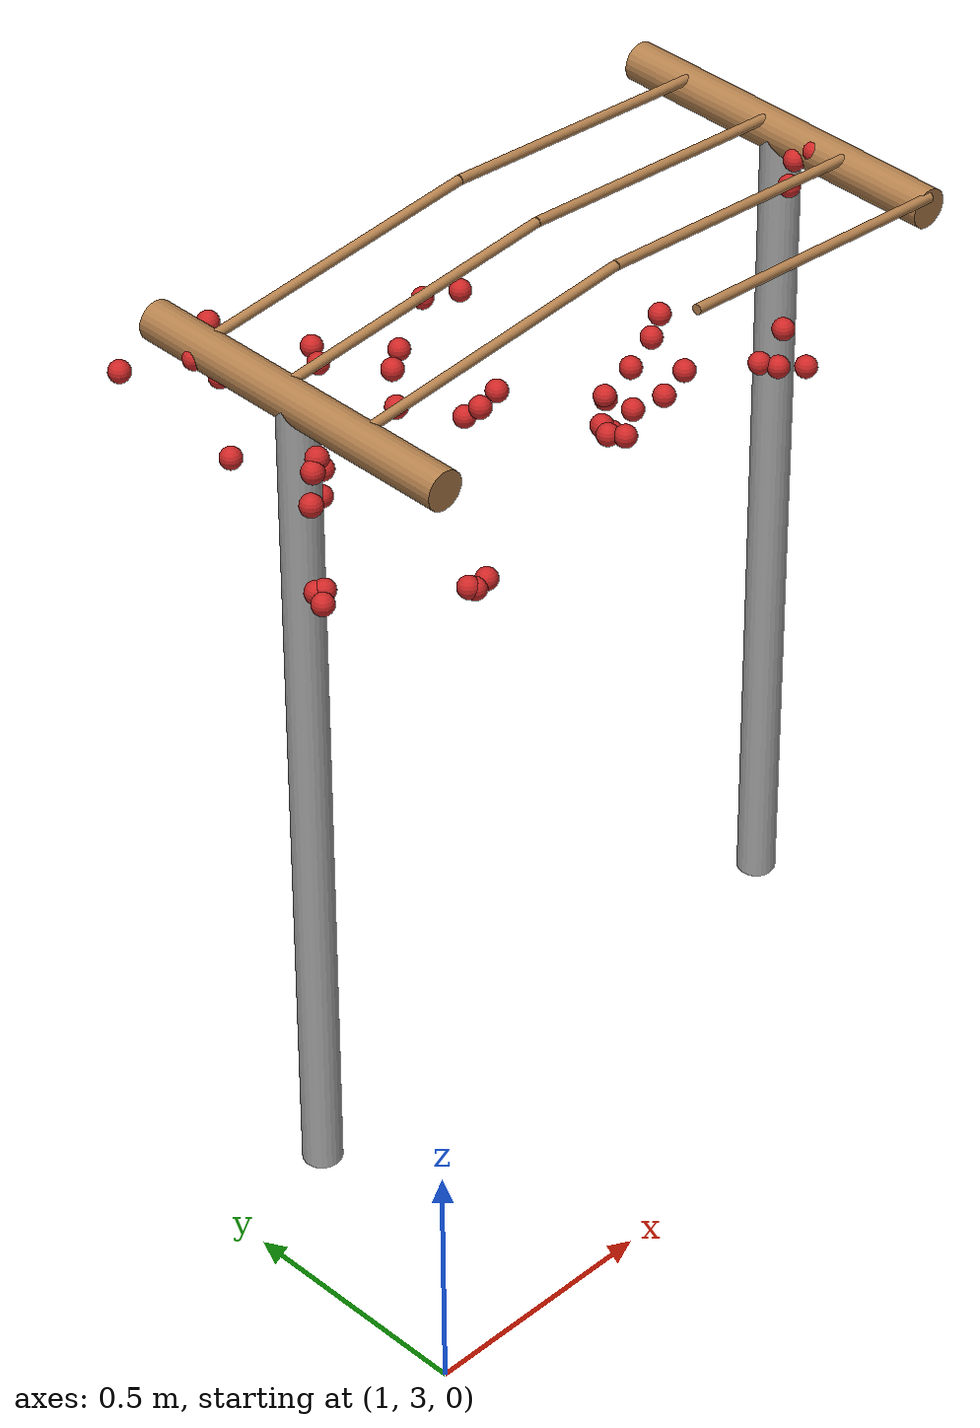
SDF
<sdf version="1.4">
 <model name="pergola">
  <include><name>tree_10</name><pose>1.25 3.6 0 0 0 0</pose><uri>model://tree_trunk</uri></include>
  <include><name>tree_16</name><pose>2.5 3.6 0 0 0 0</pose><uri>model://tree_trunk</uri></include>
  <link name="baseBranch_10">
   <pose>1.25 3.6 1.8 1.5707963267948966 0 0</pose>
   <collision name="collision">
    <geometry><cylinder><radius>0.04</radius><length>0.74</length></cylinder></geometry>
   </collision>
   <visual name="visual">
    <geometry><cylinder><radius>0.04</radius><length>0.74</length></cylinder></geometry>
    <material><script><name>Gazebo/WoodFloor</name></script></material>
   </visual>
   <inertial>
    <mass>10</mass>
    <inertia>
     <ixx>0.4603333333333333</ixx>
     <ixy>0.0</ixy>
     <ixz>0.0</ixz>
     <iyy>0.4603333333333333</iyy>
     <iyz>0.0</iyz>
     <izz>0.008</izz>
    </inertia>
   </inertial>
  </link>
  <link name="baseBranch_16">
   <pose>2.5 3.6 1.8 1.5707963267948966 0 0</pose>
   <collision name="collision">
    <geometry><cylinder><radius>0.04</radius><length>0.74</length></cylinder></geometry>
   </collision>
   <visual name="visual">
    <geometry><cylinder><radius>0.04</radius><length>0.74</length></cylinder></geometry>
    <material><script><name>Gazebo/WoodFloor</name></script></material>
   </visual>
   <inertial>
    <mass>10</mass>
    <inertia>
     <ixx>0.4603333333333333</ixx>
     <ixy>0.0</ixy>
     <ixz>0.0</ixz>
     <iyy>0.4603333333333333</iyy>
     <iyz>0.0</iyz>
     <izz>0.008</izz>
    </inertia>
   </inertial>
  </link>
  <link name="vine_81">
   <pose>2.1875 3.23 1.85 0 -1.4909663410826592 0</pose>
   <collision name="collision">
    <geometry><cylinder><radius>0.01</radius><length>0.6269968101992226</length></cylinder></geometry>
   </collision>
   <visual name="visual">
    <geometry><cylinder><radius>0.01</radius><length>0.6269968101992226</length></cylinder></geometry>
    <material><script><name>Gazebo/WoodFloor</name></script></material>
   </visual>
   <inertial>
    <mass>5</mass>
    <inertia>
     <ixx>0.1639270833333333</ixx>
     <ixy>0.0</ixy>
     <ixz>0.0</ixz>
     <iyy>0.1639270833333333</iyy>
     <iyz>0.0</iyz>
     <izz>0.00025</izz>
    </inertia>
   </inertial>
  </link>
  <link name="vine_82">
   <pose>1.5625 3.43 1.85 0 1.4909663410826592 0</pose>
   <collision name="collision">
    <geometry><cylinder><radius>0.01</radius><length>0.6269968101992226</length></cylinder></geometry>
   </collision>
   <visual name="visual">
    <geometry><cylinder><radius>0.01</radius><length>0.6269968101992226</length></cylinder></geometry>
    <material><script><name>Gazebo/WoodFloor</name></script></material>
   </visual>
   <inertial>
    <mass>5</mass>
    <inertia>
     <ixx>0.1639270833333333</ixx>
     <ixy>0.0</ixy>
     <ixz>0.0</ixz>
     <iyy>0.1639270833333333</iyy>
     <iyz>0.0</iyz>
     <izz>0.00025</izz>
    </inertia>
   </inertial>
  </link>
  <link name="vine_83">
   <pose>2.1875 3.43 1.85 0 -1.4909663410826592 0</pose>
   <collision name="collision">
    <geometry><cylinder><radius>0.01</radius><length>0.6269968101992226</length></cylinder></geometry>
   </collision>
   <visual name="visual">
    <geometry><cylinder><radius>0.01</radius><length>0.6269968101992226</length></cylinder></geometry>
    <material><script><name>Gazebo/WoodFloor</name></script></material>
   </visual>
   <inertial>
    <mass>5</mass>
    <inertia>
     <ixx>0.1639270833333333</ixx>
     <ixy>0.0</ixy>
     <ixz>0.0</ixz>
     <iyy>0.1639270833333333</iyy>
     <iyz>0.0</iyz>
     <izz>0.00025</izz>
    </inertia>
   </inertial>
  </link>
  <link name="vine_84">
   <pose>1.5625 3.63 1.85 0 1.4909663410826592 0</pose>
   <collision name="collision">
    <geometry><cylinder><radius>0.01</radius><length>0.6269968101992226</length></cylinder></geometry>
   </collision>
   <visual name="visual">
    <geometry><cylinder><radius>0.01</radius><length>0.6269968101992226</length></cylinder></geometry>
    <material><script><name>Gazebo/WoodFloor</name></script></material>
   </visual>
   <inertial>
    <mass>5</mass>
    <inertia>
     <ixx>0.1639270833333333</ixx>
     <ixy>0.0</ixy>
     <ixz>0.0</ixz>
     <iyy>0.1639270833333333</iyy>
     <iyz>0.0</iyz>
     <izz>0.00025</izz>
    </inertia>
   </inertial>
  </link>
  <link name="vine_85">
   <pose>2.1875 3.63 1.85 0 -1.4909663410826592 0</pose>
   <collision name="collision">
    <geometry><cylinder><radius>0.01</radius><length>0.6269968101992226</length></cylinder></geometry>
   </collision>
   <visual name="visual">
    <geometry><cylinder><radius>0.01</radius><length>0.6269968101992226</length></cylinder></geometry>
    <material><script><name>Gazebo/WoodFloor</name></script></material>
   </visual>
   <inertial>
    <mass>5</mass>
    <inertia>
     <ixx>0.1639270833333333</ixx>
     <ixy>0.0</ixy>
     <ixz>0.0</ixz>
     <iyy>0.1639270833333333</iyy>
     <iyz>0.0</iyz>
     <izz>0.00025</izz>
    </inertia>
   </inertial>
  </link>
  <link name="vine_86">
   <pose>1.5625 3.83 1.85 0 1.4909663410826592 0</pose>
   <collision name="collision">
    <geometry><cylinder><radius>0.01</radius><length>0.6269968101992226</length></cylinder></geometry>
   </collision>
   <visual name="visual">
    <geometry><cylinder><radius>0.01</radius><length>0.6269968101992226</length></cylinder></geometry>
    <material><script><name>Gazebo/WoodFloor</name></script></material>
   </visual>
   <inertial>
    <mass>5</mass>
    <inertia>
     <ixx>0.1639270833333333</ixx>
     <ixy>0.0</ixy>
     <ixz>0.0</ixz>
     <iyy>0.1639270833333333</iyy>
     <iyz>0.0</iyz>
     <izz>0.00025</izz>
    </inertia>
   </inertial>
  </link>
  <link name="vine_87">
   <pose>2.1875 3.83 1.85 0 -1.4909663410826592 0</pose>
   <collision name="collision">
    <geometry><cylinder><radius>0.01</radius><length>0.6269968101992226</length></cylinder></geometry>
   </collision>
   <visual name="visual">
    <geometry><cylinder><radius>0.01</radius><length>0.6269968101992226</length></cylinder></geometry>
    <material><script><name>Gazebo/WoodFloor</name></script></material>
   </visual>
   <inertial>
    <mass>5</mass>
    <inertia>
     <ixx>0.1639270833333333</ixx>
     <ixy>0.0</ixy>
     <ixz>0.0</ixz>
     <iyy>0.1639270833333333</iyy>
     <iyz>0.0</iyz>
     <izz>0.00025</izz>
    </inertia>
   </inertial>
  </link>
  <link name="fruit_26">
   <pose>1.2367877908554399 3.7677351039851623 1.6043946678326342 0 0 0</pose>
   <collision name="fruit_collision_26"><geometry><sphere><radius>0.022</radius></sphere></geometry></collision>
   <visual name="visual">
    <geometry><sphere><radius>0.022</radius></sphere></geometry>
    <material><script><name>Gazebo/Red</name></script></material>
   </visual>
   <inertial>
    <mass>0.05</mass>
    <inertia>
     <ixx>9.679999999999999e-06</ixx>
     <ixy>0.0</ixy>
     <ixz>0.0</ixz>
     <iyy>9.679999999999999e-06</iyy>
     <iyz>0.0</iyz>
     <izz>9.679999999999999e-06</izz>
    </inertia>
   </inertial>
   <sensor name="fruit_contact_26" type="contact">
    <plugin name="contact_plugin_26" filename="libcontact_plugin.so"/>
    <contact><collision>fruit_collision_26</collision><topic>fruit_contact_topic_26</topic></contact>
   </sensor>
  </link>
  <link name="fruit_38">
   <pose>1.585192683804008 3.48366667679971 1.6825318529486568 0 0 0</pose>
   <collision name="fruit_collision_38"><geometry><sphere><radius>0.022</radius></sphere></geometry></collision>
   <visual name="visual">
    <geometry><sphere><radius>0.022</radius></sphere></geometry>
    <material><script><name>Gazebo/Red</name></script></material>
   </visual>
   <inertial>
    <mass>0.05</mass>
    <inertia>
     <ixx>9.679999999999999e-06</ixx>
     <ixy>0.0</ixy>
     <ixz>0.0</ixz>
     <iyy>9.679999999999999e-06</iyy>
     <iyz>0.0</iyz>
     <izz>9.679999999999999e-06</izz>
    </inertia>
   </inertial>
   <sensor name="fruit_contact_38" type="contact">
    <plugin name="contact_plugin_38" filename="libcontact_plugin.so"/>
    <contact><collision>fruit_collision_38</collision><topic>fruit_contact_topic_38</topic></contact>
   </sensor>
  </link>
  <link name="fruit_49">
   <pose>1.222635988713099 3.839438221394271 1.7926460251630605 0 0 0</pose>
   <collision name="fruit_collision_49"><geometry><sphere><radius>0.022</radius></sphere></geometry></collision>
   <visual name="visual">
    <geometry><sphere><radius>0.022</radius></sphere></geometry>
    <material><script><name>Gazebo/Red</name></script></material>
   </visual>
   <inertial>
    <mass>0.05</mass>
    <inertia>
     <ixx>9.679999999999999e-06</ixx>
     <ixy>0.0</ixy>
     <ixz>0.0</ixz>
     <iyy>9.679999999999999e-06</iyy>
     <iyz>0.0</iyz>
     <izz>9.679999999999999e-06</izz>
    </inertia>
   </inertial>
   <sensor name="fruit_contact_49" type="contact">
    <plugin name="contact_plugin_49" filename="libcontact_plugin.so"/>
    <contact><collision>fruit_collision_49</collision><topic>fruit_contact_topic_49</topic></contact>
   </sensor>
  </link>
  <link name="fruit_61">
   <pose>1.6604128192488463 3.6015648032618537 1.5657567744321557 0 0 0</pose>
   <collision name="fruit_collision_61"><geometry><sphere><radius>0.022</radius></sphere></geometry></collision>
   <visual name="visual">
    <geometry><sphere><radius>0.022</radius></sphere></geometry>
    <material><script><name>Gazebo/Red</name></script></material>
   </visual>
   <inertial>
    <mass>0.05</mass>
    <inertia>
     <ixx>9.679999999999999e-06</ixx>
     <ixy>0.0</ixy>
     <ixz>0.0</ixz>
     <iyy>9.679999999999999e-06</iyy>
     <iyz>0.0</iyz>
     <izz>9.679999999999999e-06</izz>
    </inertia>
   </inertial>
   <sensor name="fruit_contact_61" type="contact">
    <plugin name="contact_plugin_61" filename="libcontact_plugin.so"/>
    <contact><collision>fruit_collision_61</collision><topic>fruit_contact_topic_61</topic></contact>
   </sensor>
  </link>
  <link name="fruit_72">
   <pose>1.9156851851900694 3.342498041368947 1.61368961053551 0 0 0</pose>
   <collision name="fruit_collision_72"><geometry><sphere><radius>0.022</radius></sphere></geometry></collision>
   <visual name="visual">
    <geometry><sphere><radius>0.022</radius></sphere></geometry>
    <material><script><name>Gazebo/Red</name></script></material>
   </visual>
   <inertial>
    <mass>0.05</mass>
    <inertia>
     <ixx>9.679999999999999e-06</ixx>
     <ixy>0.0</ixy>
     <ixz>0.0</ixz>
     <iyy>9.679999999999999e-06</iyy>
     <iyz>0.0</iyz>
     <izz>9.679999999999999e-06</izz>
    </inertia>
   </inertial>
   <sensor name="fruit_contact_72" type="contact">
    <plugin name="contact_plugin_72" filename="libcontact_plugin.so"/>
    <contact><collision>fruit_collision_72</collision><topic>fruit_contact_topic_72</topic></contact>
   </sensor>
  </link>
  <link name="fruit_94">
   <pose>2.007971794489659 3.4637966922685575 1.6387029193531184 0 0 0</pose>
   <collision name="fruit_collision_94"><geometry><sphere><radius>0.022</radius></sphere></geometry></collision>
   <visual name="visual">
    <geometry><sphere><radius>0.022</radius></sphere></geometry>
    <material><script><name>Gazebo/Red</name></script></material>
   </visual>
   <inertial>
    <mass>0.05</mass>
    <inertia>
     <ixx>9.679999999999999e-06</ixx>
     <ixy>0.0</ixy>
     <ixz>0.0</ixz>
     <iyy>9.679999999999999e-06</iyy>
     <iyz>0.0</iyz>
     <izz>9.679999999999999e-06</izz>
    </inertia>
   </inertial>
   <sensor name="fruit_contact_94" type="contact">
    <plugin name="contact_plugin_94" filename="libcontact_plugin.so"/>
    <contact><collision>fruit_collision_94</collision><topic>fruit_contact_topic_94</topic></contact>
   </sensor>
  </link>
  <link name="fruit_122">
   <pose>1.1399603225912893 3.9480990674627554 1.7518022042465287 0 0 0</pose>
   <collision name="fruit_collision_122"><geometry><sphere><radius>0.022</radius></sphere></geometry></collision>
   <visual name="visual">
    <geometry><sphere><radius>0.022</radius></sphere></geometry>
    <material><script><name>Gazebo/Red</name></script></material>
   </visual>
   <inertial>
    <mass>0.05</mass>
    <inertia>
     <ixx>9.679999999999999e-06</ixx>
     <ixy>0.0</ixy>
     <ixz>0.0</ixz>
     <iyy>9.679999999999999e-06</iyy>
     <iyz>0.0</iyz>
     <izz>9.679999999999999e-06</izz>
    </inertia>
   </inertial>
   <sensor name="fruit_contact_122" type="contact">
    <plugin name="contact_plugin_122" filename="libcontact_plugin.so"/>
    <contact><collision>fruit_collision_122</collision><topic>fruit_contact_topic_122</topic></contact>
   </sensor>
  </link>
  <link name="fruit_181">
   <pose>1.8930099475969158 3.848703166136173 1.6152778939410475 0 0 0</pose>
   <collision name="fruit_collision_181"><geometry><sphere><radius>0.022</radius></sphere></geometry></collision>
   <visual name="visual">
    <geometry><sphere><radius>0.022</radius></sphere></geometry>
    <material><script><name>Gazebo/Red</name></script></material>
   </visual>
   <inertial>
    <mass>0.05</mass>
    <inertia>
     <ixx>9.679999999999999e-06</ixx>
     <ixy>0.0</ixy>
     <ixz>0.0</ixz>
     <iyy>9.679999999999999e-06</iyy>
     <iyz>0.0</iyz>
     <izz>9.679999999999999e-06</izz>
    </inertia>
   </inertial>
   <sensor name="fruit_contact_181" type="contact">
    <plugin name="contact_plugin_181" filename="libcontact_plugin.so"/>
    <contact><collision>fruit_collision_181</collision><topic>fruit_contact_topic_181</topic></contact>
   </sensor>
  </link>
  <link name="fruit_200">
   <pose>2.2291808825509483 3.3372819980320143 1.611080412467864 0 0 0</pose>
   <collision name="fruit_collision_200"><geometry><sphere><radius>0.022</radius></sphere></geometry></collision>
   <visual name="visual">
    <geometry><sphere><radius>0.022</radius></sphere></geometry>
    <material><script><name>Gazebo/Red</name></script></material>
   </visual>
   <inertial>
    <mass>0.05</mass>
    <inertia>
     <ixx>9.679999999999999e-06</ixx>
     <ixy>0.0</ixy>
     <ixz>0.0</ixz>
     <iyy>9.679999999999999e-06</iyy>
     <iyz>0.0</iyz>
     <izz>9.679999999999999e-06</izz>
    </inertia>
   </inertial>
   <sensor name="fruit_contact_200" type="contact">
    <plugin name="contact_plugin_200" filename="libcontact_plugin.so"/>
    <contact><collision>fruit_collision_200</collision><topic>fruit_contact_topic_200</topic></contact>
   </sensor>
  </link>
  <link name="fruit_202">
   <pose>1.0734946555661253 3.3773860181673228 1.7847601183261919 0 0 0</pose>
   <collision name="fruit_collision_202"><geometry><sphere><radius>0.022</radius></sphere></geometry></collision>
   <visual name="visual">
    <geometry><sphere><radius>0.022</radius></sphere></geometry>
    <material><script><name>Gazebo/Red</name></script></material>
   </visual>
   <inertial>
    <mass>0.05</mass>
    <inertia>
     <ixx>9.679999999999999e-06</ixx>
     <ixy>0.0</ixy>
     <ixz>0.0</ixz>
     <iyy>9.679999999999999e-06</iyy>
     <iyz>0.0</iyz>
     <izz>9.679999999999999e-06</izz>
    </inertia>
   </inertial>
   <sensor name="fruit_contact_202" type="contact">
    <plugin name="contact_plugin_202" filename="libcontact_plugin.so"/>
    <contact><collision>fruit_collision_202</collision><topic>fruit_contact_topic_202</topic></contact>
   </sensor>
  </link>
  <link name="fruit_219">
   <pose>1.9071833525496182 3.9658025523673093 1.5356832465161026 0 0 0</pose>
   <collision name="fruit_collision_219"><geometry><sphere><radius>0.022</radius></sphere></geometry></collision>
   <visual name="visual">
    <geometry><sphere><radius>0.022</radius></sphere></geometry>
    <material><script><name>Gazebo/Red</name></script></material>
   </visual>
   <inertial>
    <mass>0.05</mass>
    <inertia>
     <ixx>9.679999999999999e-06</ixx>
     <ixy>0.0</ixy>
     <ixz>0.0</ixz>
     <iyy>9.679999999999999e-06</iyy>
     <iyz>0.0</iyz>
     <izz>9.679999999999999e-06</izz>
    </inertia>
   </inertial>
   <sensor name="fruit_contact_219" type="contact">
    <plugin name="contact_plugin_219" filename="libcontact_plugin.so"/>
    <contact><collision>fruit_collision_219</collision><topic>fruit_contact_topic_219</topic></contact>
   </sensor>
  </link>
  <link name="fruit_234">
   <pose>2.4811545571833453 3.501317937322626 1.8116420128448356 0 0 0</pose>
   <collision name="fruit_collision_234"><geometry><sphere><radius>0.022</radius></sphere></geometry></collision>
   <visual name="visual">
    <geometry><sphere><radius>0.022</radius></sphere></geometry>
    <material><script><name>Gazebo/Red</name></script></material>
   </visual>
   <inertial>
    <mass>0.05</mass>
    <inertia>
     <ixx>9.679999999999999e-06</ixx>
     <ixy>0.0</ixy>
     <ixz>0.0</ixz>
     <iyy>9.679999999999999e-06</iyy>
     <iyz>0.0</iyz>
     <izz>9.679999999999999e-06</izz>
    </inertia>
   </inertial>
   <sensor name="fruit_contact_234" type="contact">
    <plugin name="contact_plugin_234" filename="libcontact_plugin.so"/>
    <contact><collision>fruit_collision_234</collision><topic>fruit_contact_topic_234</topic></contact>
   </sensor>
  </link>
  <link name="fruit_235">
   <pose>1.0892326047636545 3.37242218235424 1.5664816733353548 0 0 0</pose>
   <collision name="fruit_collision_235"><geometry><sphere><radius>0.022</radius></sphere></geometry></collision>
   <visual name="visual">
    <geometry><sphere><radius>0.022</radius></sphere></geometry>
    <material><script><name>Gazebo/Red</name></script></material>
   </visual>
   <inertial>
    <mass>0.05</mass>
    <inertia>
     <ixx>9.679999999999999e-06</ixx>
     <ixy>0.0</ixy>
     <ixz>0.0</ixz>
     <iyy>9.679999999999999e-06</iyy>
     <iyz>0.0</iyz>
     <izz>9.679999999999999e-06</izz>
    </inertia>
   </inertial>
   <sensor name="fruit_contact_235" type="contact">
    <plugin name="contact_plugin_235" filename="libcontact_plugin.so"/>
    <contact><collision>fruit_collision_235</collision><topic>fruit_contact_topic_235</topic></contact>
   </sensor>
  </link>
  <link name="fruit_243">
   <pose>2.3641323248704853 3.4549674798548304 1.8098995807670788 0 0 0</pose>
   <collision name="fruit_collision_243"><geometry><sphere><radius>0.022</radius></sphere></geometry></collision>
   <visual name="visual">
    <geometry><sphere><radius>0.022</radius></sphere></geometry>
    <material><script><name>Gazebo/Red</name></script></material>
   </visual>
   <inertial>
    <mass>0.05</mass>
    <inertia>
     <ixx>9.679999999999999e-06</ixx>
     <ixy>0.0</ixy>
     <ixz>0.0</ixz>
     <iyy>9.679999999999999e-06</iyy>
     <iyz>0.0</iyz>
     <izz>9.679999999999999e-06</izz>
    </inertia>
   </inertial>
   <sensor name="fruit_contact_243" type="contact">
    <plugin name="contact_plugin_243" filename="libcontact_plugin.so"/>
    <contact><collision>fruit_collision_243</collision><topic>fruit_contact_topic_243</topic></contact>
   </sensor>
  </link>
  <link name="fruit_272">
   <pose>1.5766509268006097 3.901228886864622 1.5787244411935903 0 0 0</pose>
   <collision name="fruit_collision_272"><geometry><sphere><radius>0.022</radius></sphere></geometry></collision>
   <visual name="visual">
    <geometry><sphere><radius>0.022</radius></sphere></geometry>
    <material><script><name>Gazebo/Red</name></script></material>
   </visual>
   <inertial>
    <mass>0.05</mass>
    <inertia>
     <ixx>9.679999999999999e-06</ixx>
     <ixy>0.0</ixy>
     <ixz>0.0</ixz>
     <iyy>9.679999999999999e-06</iyy>
     <iyz>0.0</iyz>
     <izz>9.679999999999999e-06</izz>
    </inertia>
   </inertial>
   <sensor name="fruit_contact_272" type="contact">
    <plugin name="contact_plugin_272" filename="libcontact_plugin.so"/>
    <contact><collision>fruit_collision_272</collision><topic>fruit_contact_topic_272</topic></contact>
   </sensor>
  </link>
  <link name="fruit_274">
   <pose>1.4280549181475914 3.535828972345495 1.7355366251400894 0 0 0</pose>
   <collision name="fruit_collision_274"><geometry><sphere><radius>0.022</radius></sphere></geometry></collision>
   <visual name="visual">
    <geometry><sphere><radius>0.022</radius></sphere></geometry>
    <material><script><name>Gazebo/Red</name></script></material>
   </visual>
   <inertial>
    <mass>0.05</mass>
    <inertia>
     <ixx>9.679999999999999e-06</ixx>
     <ixy>0.0</ixy>
     <ixz>0.0</ixz>
     <iyy>9.679999999999999e-06</iyy>
     <iyz>0.0</iyz>
     <izz>9.679999999999999e-06</izz>
    </inertia>
   </inertial>
   <sensor name="fruit_contact_274" type="contact">
    <plugin name="contact_plugin_274" filename="libcontact_plugin.so"/>
    <contact><collision>fruit_collision_274</collision><topic>fruit_contact_topic_274</topic></contact>
   </sensor>
  </link>
  <link name="fruit_298">
   <pose>1.8175975915607883 3.3804898504347385 1.5634968644063094 0 0 0</pose>
   <collision name="fruit_collision_298"><geometry><sphere><radius>0.022</radius></sphere></geometry></collision>
   <visual name="visual">
    <geometry><sphere><radius>0.022</radius></sphere></geometry>
    <material><script><name>Gazebo/Red</name></script></material>
   </visual>
   <inertial>
    <mass>0.05</mass>
    <inertia>
     <ixx>9.679999999999999e-06</ixx>
     <ixy>0.0</ixy>
     <ixz>0.0</ixz>
     <iyy>9.679999999999999e-06</iyy>
     <iyz>0.0</iyz>
     <izz>9.679999999999999e-06</izz>
    </inertia>
   </inertial>
   <sensor name="fruit_contact_298" type="contact">
    <plugin name="contact_plugin_298" filename="libcontact_plugin.so"/>
    <contact><collision>fruit_collision_298</collision><topic>fruit_contact_topic_298</topic></contact>
   </sensor>
  </link>
  <link name="fruit_335">
   <pose>1.3331353876420484 3.6356107456279556 1.5374936916110482 0 0 0</pose>
   <collision name="fruit_collision_335"><geometry><sphere><radius>0.022</radius></sphere></geometry></collision>
   <visual name="visual">
    <geometry><sphere><radius>0.022</radius></sphere></geometry>
    <material><script><name>Gazebo/Red</name></script></material>
   </visual>
   <inertial>
    <mass>0.05</mass>
    <inertia>
     <ixx>9.679999999999999e-06</ixx>
     <ixy>0.0</ixy>
     <ixz>0.0</ixz>
     <iyy>9.679999999999999e-06</iyy>
     <iyz>0.0</iyz>
     <izz>9.679999999999999e-06</izz>
    </inertia>
   </inertial>
   <sensor name="fruit_contact_335" type="contact">
    <plugin name="contact_plugin_335" filename="libcontact_plugin.so"/>
    <contact><collision>fruit_collision_335</collision><topic>fruit_contact_topic_335</topic></contact>
   </sensor>
  </link>
  <link name="fruit_337">
   <pose>1.2851881315170142 3.8433098743949405 1.7201093535211964 0 0 0</pose>
   <collision name="fruit_collision_337"><geometry><sphere><radius>0.022</radius></sphere></geometry></collision>
   <visual name="visual">
    <geometry><sphere><radius>0.022</radius></sphere></geometry>
    <material><script><name>Gazebo/Red</name></script></material>
   </visual>
   <inertial>
    <mass>0.05</mass>
    <inertia>
     <ixx>9.679999999999999e-06</ixx>
     <ixy>0.0</ixy>
     <ixz>0.0</ixz>
     <iyy>9.679999999999999e-06</iyy>
     <iyz>0.0</iyz>
     <izz>9.679999999999999e-06</izz>
    </inertia>
   </inertial>
   <sensor name="fruit_contact_337" type="contact">
    <plugin name="contact_plugin_337" filename="libcontact_plugin.so"/>
    <contact><collision>fruit_collision_337</collision><topic>fruit_contact_topic_337</topic></contact>
   </sensor>
  </link>
  <link name="fruit_339">
   <pose>1.7386166265746184 3.854340597442947 1.5538862646942457 0 0 0</pose>
   <collision name="fruit_collision_339"><geometry><sphere><radius>0.022</radius></sphere></geometry></collision>
   <visual name="visual">
    <geometry><sphere><radius>0.022</radius></sphere></geometry>
    <material><script><name>Gazebo/Red</name></script></material>
   </visual>
   <inertial>
    <mass>0.05</mass>
    <inertia>
     <ixx>9.679999999999999e-06</ixx>
     <ixy>0.0</ixy>
     <ixz>0.0</ixz>
     <iyy>9.679999999999999e-06</iyy>
     <iyz>0.0</iyz>
     <izz>9.679999999999999e-06</izz>
    </inertia>
   </inertial>
   <sensor name="fruit_contact_339" type="contact">
    <plugin name="contact_plugin_339" filename="libcontact_plugin.so"/>
    <contact><collision>fruit_collision_339</collision><topic>fruit_contact_topic_339</topic></contact>
   </sensor>
  </link>
  <link name="fruit_363">
   <pose>1.8958029918258097 3.4710444257405526 1.5525482733915932 0 0 0</pose>
   <collision name="fruit_collision_363"><geometry><sphere><radius>0.022</radius></sphere></geometry></collision>
   <visual name="visual">
    <geometry><sphere><radius>0.022</radius></sphere></geometry>
    <material><script><name>Gazebo/Red</name></script></material>
   </visual>
   <inertial>
    <mass>0.05</mass>
    <inertia>
     <ixx>9.679999999999999e-06</ixx>
     <ixy>0.0</ixy>
     <ixz>0.0</ixz>
     <iyy>9.679999999999999e-06</iyy>
     <iyz>0.0</iyz>
     <izz>9.679999999999999e-06</izz>
    </inertia>
   </inertial>
   <sensor name="fruit_contact_363" type="contact">
    <plugin name="contact_plugin_363" filename="libcontact_plugin.so"/>
    <contact><collision>fruit_collision_363</collision><topic>fruit_contact_topic_363</topic></contact>
   </sensor>
  </link>
  <link name="fruit_381">
   <pose>1.1551916236259256 3.4608080560288146 1.7705764437099059 0 0 0</pose>
   <collision name="fruit_collision_381"><geometry><sphere><radius>0.022</radius></sphere></geometry></collision>
   <visual name="visual">
    <geometry><sphere><radius>0.022</radius></sphere></geometry>
    <material><script><name>Gazebo/Red</name></script></material>
   </visual>
   <inertial>
    <mass>0.05</mass>
    <inertia>
     <ixx>9.679999999999999e-06</ixx>
     <ixy>0.0</ixy>
     <ixz>0.0</ixz>
     <iyy>9.679999999999999e-06</iyy>
     <iyz>0.0</iyz>
     <izz>9.679999999999999e-06</izz>
    </inertia>
   </inertial>
   <sensor name="fruit_contact_381" type="contact">
    <plugin name="contact_plugin_381" filename="libcontact_plugin.so"/>
    <contact><collision>fruit_collision_381</collision><topic>fruit_contact_topic_381</topic></contact>
   </sensor>
  </link>
  <link name="fruit_398">
   <pose>1.4056968226145954 3.7092012433628194 1.5232247435408703 0 0 0</pose>
   <collision name="fruit_collision_398"><geometry><sphere><radius>0.022</radius></sphere></geometry></collision>
   <visual name="visual">
    <geometry><sphere><radius>0.022</radius></sphere></geometry>
    <material><script><name>Gazebo/Red</name></script></material>
   </visual>
   <inertial>
    <mass>0.05</mass>
    <inertia>
     <ixx>9.679999999999999e-06</ixx>
     <ixy>0.0</ixy>
     <ixz>0.0</ixz>
     <iyy>9.679999999999999e-06</iyy>
     <iyz>0.0</iyz>
     <izz>9.679999999999999e-06</izz>
    </inertia>
   </inertial>
   <sensor name="fruit_contact_398" type="contact">
    <plugin name="contact_plugin_398" filename="libcontact_plugin.so"/>
    <contact><collision>fruit_collision_398</collision><topic>fruit_contact_topic_398</topic></contact>
   </sensor>
  </link>
  <link name="fruit_435">
   <pose>2.1469434909628684 3.273660720498892 1.5977834715063286 0 0 0</pose>
   <collision name="fruit_collision_435"><geometry><sphere><radius>0.022</radius></sphere></geometry></collision>
   <visual name="visual">
    <geometry><sphere><radius>0.022</radius></sphere></geometry>
    <material><script><name>Gazebo/Red</name></script></material>
   </visual>
   <inertial>
    <mass>0.05</mass>
    <inertia>
     <ixx>9.679999999999999e-06</ixx>
     <ixy>0.0</ixy>
     <ixz>0.0</ixz>
     <iyy>9.679999999999999e-06</iyy>
     <iyz>0.0</iyz>
     <izz>9.679999999999999e-06</izz>
    </inertia>
   </inertial>
   <sensor name="fruit_contact_435" type="contact">
    <plugin name="contact_plugin_435" filename="libcontact_plugin.so"/>
    <contact><collision>fruit_collision_435</collision><topic>fruit_contact_topic_435</topic></contact>
   </sensor>
  </link>
  <link name="fruit_472">
   <pose>2.079866902728814 3.5117395783883962 1.6329339483313345 0 0 0</pose>
   <collision name="fruit_collision_472"><geometry><sphere><radius>0.022</radius></sphere></geometry></collision>
   <visual name="visual">
    <geometry><sphere><radius>0.022</radius></sphere></geometry>
    <material><script><name>Gazebo/Red</name></script></material>
   </visual>
   <inertial>
    <mass>0.05</mass>
    <inertia>
     <ixx>9.679999999999999e-06</ixx>
     <ixy>0.0</ixy>
     <ixz>0.0</ixz>
     <iyy>9.679999999999999e-06</iyy>
     <iyz>0.0</iyz>
     <izz>9.679999999999999e-06</izz>
    </inertia>
   </inertial>
   <sensor name="fruit_contact_472" type="contact">
    <plugin name="contact_plugin_472" filename="libcontact_plugin.so"/>
    <contact><collision>fruit_collision_472</collision><topic>fruit_contact_topic_472</topic></contact>
   </sensor>
  </link>
  <link name="fruit_473">
   <pose>2.0068669534728585 3.3783470506132223 1.6070110311886328 0 0 0</pose>
   <collision name="fruit_collision_473"><geometry><sphere><radius>0.022</radius></sphere></geometry></collision>
   <visual name="visual">
    <geometry><sphere><radius>0.022</radius></sphere></geometry>
    <material><script><name>Gazebo/Red</name></script></material>
   </visual>
   <inertial>
    <mass>0.05</mass>
    <inertia>
     <ixx>9.679999999999999e-06</ixx>
     <ixy>0.0</ixy>
     <ixz>0.0</ixz>
     <iyy>9.679999999999999e-06</iyy>
     <iyz>0.0</iyz>
     <izz>9.679999999999999e-06</izz>
    </inertia>
   </inertial>
   <sensor name="fruit_contact_473" type="contact">
    <plugin name="contact_plugin_473" filename="libcontact_plugin.so"/>
    <contact><collision>fruit_collision_473</collision><topic>fruit_contact_topic_473</topic></contact>
   </sensor>
  </link>
  <link name="fruit_485">
   <pose>1.7200190717366124 3.252083267584429 1.667574508653197 0 0 0</pose>
   <collision name="fruit_collision_485"><geometry><sphere><radius>0.022</radius></sphere></geometry></collision>
   <visual name="visual">
    <geometry><sphere><radius>0.022</radius></sphere></geometry>
    <material><script><name>Gazebo/Red</name></script></material>
   </visual>
   <inertial>
    <mass>0.05</mass>
    <inertia>
     <ixx>9.679999999999999e-06</ixx>
     <ixy>0.0</ixy>
     <ixz>0.0</ixz>
     <iyy>9.679999999999999e-06</iyy>
     <iyz>0.0</iyz>
     <izz>9.679999999999999e-06</izz>
    </inertia>
   </inertial>
   <sensor name="fruit_contact_485" type="contact">
    <plugin name="contact_plugin_485" filename="libcontact_plugin.so"/>
    <contact><collision>fruit_collision_485</collision><topic>fruit_contact_topic_485</topic></contact>
   </sensor>
  </link>
  <link name="fruit_486">
   <pose>1.3266573077499006 3.9170158547508254 1.7834183582880248 0 0 0</pose>
   <collision name="fruit_collision_486"><geometry><sphere><radius>0.022</radius></sphere></geometry></collision>
   <visual name="visual">
    <geometry><sphere><radius>0.022</radius></sphere></geometry>
    <material><script><name>Gazebo/Red</name></script></material>
   </visual>
   <inertial>
    <mass>0.05</mass>
    <inertia>
     <ixx>9.679999999999999e-06</ixx>
     <ixy>0.0</ixy>
     <ixz>0.0</ixz>
     <iyy>9.679999999999999e-06</iyy>
     <iyz>0.0</iyz>
     <izz>9.679999999999999e-06</izz>
    </inertia>
   </inertial>
   <sensor name="fruit_contact_486" type="contact">
    <plugin name="contact_plugin_486" filename="libcontact_plugin.so"/>
    <contact><collision>fruit_collision_486</collision><topic>fruit_contact_topic_486</topic></contact>
   </sensor>
  </link>
  <link name="fruit_494">
   <pose>1.9090394795459527 3.414208583149352 1.5505104143034072 0 0 0</pose>
   <collision name="fruit_collision_494"><geometry><sphere><radius>0.022</radius></sphere></geometry></collision>
   <visual name="visual">
    <geometry><sphere><radius>0.022</radius></sphere></geometry>
    <material><script><name>Gazebo/Red</name></script></material>
   </visual>
   <inertial>
    <mass>0.05</mass>
    <inertia>
     <ixx>9.679999999999999e-06</ixx>
     <ixy>0.0</ixy>
     <ixz>0.0</ixz>
     <iyy>9.679999999999999e-06</iyy>
     <iyz>0.0</iyz>
     <izz>9.679999999999999e-06</izz>
    </inertia>
   </inertial>
   <sensor name="fruit_contact_494" type="contact">
    <plugin name="contact_plugin_494" filename="libcontact_plugin.so"/>
    <contact><collision>fruit_collision_494</collision><topic>fruit_contact_topic_494</topic></contact>
   </sensor>
  </link>
  <link name="fruit_510">
   <pose>1.7062587944449312 3.2824414126053654 1.6626071092509245 0 0 0</pose>
   <collision name="fruit_collision_510"><geometry><sphere><radius>0.022</radius></sphere></geometry></collision>
   <visual name="visual">
    <geometry><sphere><radius>0.022</radius></sphere></geometry>
    <material><script><name>Gazebo/Red</name></script></material>
   </visual>
   <inertial>
    <mass>0.05</mass>
    <inertia>
     <ixx>9.679999999999999e-06</ixx>
     <ixy>0.0</ixy>
     <ixz>0.0</ixz>
     <iyy>9.679999999999999e-06</iyy>
     <iyz>0.0</iyz>
     <izz>9.679999999999999e-06</izz>
    </inertia>
   </inertial>
   <sensor name="fruit_contact_510" type="contact">
    <plugin name="contact_plugin_510" filename="libcontact_plugin.so"/>
    <contact><collision>fruit_collision_510</collision><topic>fruit_contact_topic_510</topic></contact>
   </sensor>
  </link>
  <link name="fruit_567">
   <pose>1.1757161846180724 3.4714291527438856 1.7847422954540713 0 0 0</pose>
   <collision name="fruit_collision_567"><geometry><sphere><radius>0.022</radius></sphere></geometry></collision>
   <visual name="visual">
    <geometry><sphere><radius>0.022</radius></sphere></geometry>
    <material><script><name>Gazebo/Red</name></script></material>
   </visual>
   <inertial>
    <mass>0.05</mass>
    <inertia>
     <ixx>9.679999999999999e-06</ixx>
     <ixy>0.0</ixy>
     <ixz>0.0</ixz>
     <iyy>9.679999999999999e-06</iyy>
     <iyz>0.0</iyz>
     <izz>9.679999999999999e-06</izz>
    </inertia>
   </inertial>
   <sensor name="fruit_contact_567" type="contact">
    <plugin name="contact_plugin_567" filename="libcontact_plugin.so"/>
    <contact><collision>fruit_collision_567</collision><topic>fruit_contact_topic_567</topic></contact>
   </sensor>
  </link>
  <link name="fruit_614">
   <pose>1.515819765323213 3.637300134698907 1.724156283411528 0 0 0</pose>
   <collision name="fruit_collision_614"><geometry><sphere><radius>0.022</radius></sphere></geometry></collision>
   <visual name="visual">
    <geometry><sphere><radius>0.022</radius></sphere></geometry>
    <material><script><name>Gazebo/Red</name></script></material>
   </visual>
   <inertial>
    <mass>0.05</mass>
    <inertia>
     <ixx>9.679999999999999e-06</ixx>
     <ixy>0.0</ixy>
     <ixz>0.0</ixz>
     <iyy>9.679999999999999e-06</iyy>
     <iyz>0.0</iyz>
     <izz>9.679999999999999e-06</izz>
    </inertia>
   </inertial>
   <sensor name="fruit_contact_614" type="contact">
    <plugin name="contact_plugin_614" filename="libcontact_plugin.so"/>
    <contact><collision>fruit_collision_614</collision><topic>fruit_contact_topic_614</topic></contact>
   </sensor>
  </link>
  <link name="fruit_625">
   <pose>1.127530389988846 3.4094356005791715 1.5570096845057715 0 0 0</pose>
   <collision name="fruit_collision_625"><geometry><sphere><radius>0.022</radius></sphere></geometry></collision>
   <visual name="visual">
    <geometry><sphere><radius>0.022</radius></sphere></geometry>
    <material><script><name>Gazebo/Red</name></script></material>
   </visual>
   <inertial>
    <mass>0.05</mass>
    <inertia>
     <ixx>9.679999999999999e-06</ixx>
     <ixy>0.0</ixy>
     <ixz>0.0</ixz>
     <iyy>9.679999999999999e-06</iyy>
     <iyz>0.0</iyz>
     <izz>9.679999999999999e-06</izz>
    </inertia>
   </inertial>
   <sensor name="fruit_contact_625" type="contact">
    <plugin name="contact_plugin_625" filename="libcontact_plugin.so"/>
    <contact><collision>fruit_collision_625</collision><topic>fruit_contact_topic_625</topic></contact>
   </sensor>
  </link>
  <link name="fruit_652">
   <pose>1.1169248478392344 3.4204661591253886 1.5519365727547798 0 0 0</pose>
   <collision name="fruit_collision_652"><geometry><sphere><radius>0.022</radius></sphere></geometry></collision>
   <visual name="visual">
    <geometry><sphere><radius>0.022</radius></sphere></geometry>
    <material><script><name>Gazebo/Red</name></script></material>
   </visual>
   <inertial>
    <mass>0.05</mass>
    <inertia>
     <ixx>9.679999999999999e-06</ixx>
     <ixy>0.0</ixy>
     <ixz>0.0</ixz>
     <iyy>9.679999999999999e-06</iyy>
     <iyz>0.0</iyz>
     <izz>9.679999999999999e-06</izz>
    </inertia>
   </inertial>
   <sensor name="fruit_contact_652" type="contact">
    <plugin name="contact_plugin_652" filename="libcontact_plugin.so"/>
    <contact><collision>fruit_collision_652</collision><topic>fruit_contact_topic_652</topic></contact>
   </sensor>
  </link>
  <link name="fruit_679">
   <pose>1.3792312770949042 3.744863338098873 1.5230384514300253 0 0 0</pose>
   <collision name="fruit_collision_679"><geometry><sphere><radius>0.022</radius></sphere></geometry></collision>
   <visual name="visual">
    <geometry><sphere><radius>0.022</radius></sphere></geometry>
    <material><script><name>Gazebo/Red</name></script></material>
   </visual>
   <inertial>
    <mass>0.05</mass>
    <inertia>
     <ixx>9.679999999999999e-06</ixx>
     <ixy>0.0</ixy>
     <ixz>0.0</ixz>
     <iyy>9.679999999999999e-06</iyy>
     <iyz>0.0</iyz>
     <izz>9.679999999999999e-06</izz>
    </inertia>
   </inertial>
   <sensor name="fruit_contact_679" type="contact">
    <plugin name="contact_plugin_679" filename="libcontact_plugin.so"/>
    <contact><collision>fruit_collision_679</collision><topic>fruit_contact_topic_679</topic></contact>
   </sensor>
  </link>
  <link name="fruit_683">
   <pose>1.3106182067639178 3.9335946615624393 1.7193319586514357 0 0 0</pose>
   <collision name="fruit_collision_683"><geometry><sphere><radius>0.022</radius></sphere></geometry></collision>
   <visual name="visual">
    <geometry><sphere><radius>0.022</radius></sphere></geometry>
    <material><script><name>Gazebo/Red</name></script></material>
   </visual>
   <inertial>
    <mass>0.05</mass>
    <inertia>
     <ixx>9.679999999999999e-06</ixx>
     <ixy>0.0</ixy>
     <ixz>0.0</ixz>
     <iyy>9.679999999999999e-06</iyy>
     <iyz>0.0</iyz>
     <izz>9.679999999999999e-06</izz>
    </inertia>
   </inertial>
   <sensor name="fruit_contact_683" type="contact">
    <plugin name="contact_plugin_683" filename="libcontact_plugin.so"/>
    <contact><collision>fruit_collision_683</collision><topic>fruit_contact_topic_683</topic></contact>
   </sensor>
  </link>
  <link name="fruit_689">
   <pose>1.6572714537019744 3.514210571301227 1.6677246835840382 0 0 0</pose>
   <collision name="fruit_collision_689"><geometry><sphere><radius>0.022</radius></sphere></geometry></collision>
   <visual name="visual">
    <geometry><sphere><radius>0.022</radius></sphere></geometry>
    <material><script><name>Gazebo/Red</name></script></material>
   </visual>
   <inertial>
    <mass>0.05</mass>
    <inertia>
     <ixx>9.679999999999999e-06</ixx>
     <ixy>0.0</ixy>
     <ixz>0.0</ixz>
     <iyy>9.679999999999999e-06</iyy>
     <iyz>0.0</iyz>
     <izz>9.679999999999999e-06</izz>
    </inertia>
   </inertial>
   <sensor name="fruit_contact_689" type="contact">
    <plugin name="contact_plugin_689" filename="libcontact_plugin.so"/>
    <contact><collision>fruit_collision_689</collision><topic>fruit_contact_topic_689</topic></contact>
   </sensor>
  </link>
  <link name="fruit_694">
   <pose>1.3728859986020994 3.254192889518352 1.5339548669080367 0 0 0</pose>
   <collision name="fruit_collision_694"><geometry><sphere><radius>0.022</radius></sphere></geometry></collision>
   <visual name="visual">
    <geometry><sphere><radius>0.022</radius></sphere></geometry>
    <material><script><name>Gazebo/Red</name></script></material>
   </visual>
   <inertial>
    <mass>0.05</mass>
    <inertia>
     <ixx>9.679999999999999e-06</ixx>
     <ixy>0.0</ixy>
     <ixz>0.0</ixz>
     <iyy>9.679999999999999e-06</iyy>
     <iyz>0.0</iyz>
     <izz>9.679999999999999e-06</izz>
    </inertia>
   </inertial>
   <sensor name="fruit_contact_694" type="contact">
    <plugin name="contact_plugin_694" filename="libcontact_plugin.so"/>
    <contact><collision>fruit_collision_694</collision><topic>fruit_contact_topic_694</topic></contact>
   </sensor>
  </link>
  <link name="fruit_717">
   <pose>2.4608696324063875 3.52999243468252 1.7894178834096226 0 0 0</pose>
   <collision name="fruit_collision_717"><geometry><sphere><radius>0.022</radius></sphere></geometry></collision>
   <visual name="visual">
    <geometry><sphere><radius>0.022</radius></sphere></geometry>
    <material><script><name>Gazebo/Red</name></script></material>
   </visual>
   <inertial>
    <mass>0.05</mass>
    <inertia>
     <ixx>9.679999999999999e-06</ixx>
     <ixy>0.0</ixy>
     <ixz>0.0</ixz>
     <iyy>9.679999999999999e-06</iyy>
     <iyz>0.0</iyz>
     <izz>9.679999999999999e-06</izz>
    </inertia>
   </inertial>
   <sensor name="fruit_contact_717" type="contact">
    <plugin name="contact_plugin_717" filename="libcontact_plugin.so"/>
    <contact><collision>fruit_collision_717</collision><topic>fruit_contact_topic_717</topic></contact>
   </sensor>
  </link>
  <link name="fruit_723">
   <pose>1.3441319610545992 3.252905612519591 1.5281605416316677 0 0 0</pose>
   <collision name="fruit_collision_723"><geometry><sphere><radius>0.022</radius></sphere></geometry></collision>
   <visual name="visual">
    <geometry><sphere><radius>0.022</radius></sphere></geometry>
    <material><script><name>Gazebo/Red</name></script></material>
   </visual>
   <inertial>
    <mass>0.05</mass>
    <inertia>
     <ixx>9.679999999999999e-06</ixx>
     <ixy>0.0</ixy>
     <ixz>0.0</ixz>
     <iyy>9.679999999999999e-06</iyy>
     <iyz>0.0</iyz>
     <izz>9.679999999999999e-06</izz>
    </inertia>
   </inertial>
   <sensor name="fruit_contact_723" type="contact">
    <plugin name="contact_plugin_723" filename="libcontact_plugin.so"/>
    <contact><collision>fruit_collision_723</collision><topic>fruit_contact_topic_723</topic></contact>
   </sensor>
  </link>
  <link name="fruit_741">
   <pose>2.184150520590976 3.238075381453279 1.5970383941227375 0 0 0</pose>
   <collision name="fruit_collision_741"><geometry><sphere><radius>0.022</radius></sphere></geometry></collision>
   <visual name="visual">
    <geometry><sphere><radius>0.022</radius></sphere></geometry>
    <material><script><name>Gazebo/Red</name></script></material>
   </visual>
   <inertial>
    <mass>0.05</mass>
    <inertia>
     <ixx>9.679999999999999e-06</ixx>
     <ixy>0.0</ixy>
     <ixz>0.0</ixz>
     <iyy>9.679999999999999e-06</iyy>
     <iyz>0.0</iyz>
     <izz>9.679999999999999e-06</izz>
    </inertia>
   </inertial>
   <sensor name="fruit_contact_741" type="contact">
    <plugin name="contact_plugin_741" filename="libcontact_plugin.so"/>
    <contact><collision>fruit_collision_741</collision><topic>fruit_contact_topic_741</topic></contact>
   </sensor>
  </link>
  <link name="fruit_753">
   <pose>1.7203425718838714 3.3111496837319554 1.6607844089385668 0 0 0</pose>
   <collision name="fruit_collision_753"><geometry><sphere><radius>0.022</radius></sphere></geometry></collision>
   <visual name="visual">
    <geometry><sphere><radius>0.022</radius></sphere></geometry>
    <material><script><name>Gazebo/Red</name></script></material>
   </visual>
   <inertial>
    <mass>0.05</mass>
    <inertia>
     <ixx>9.679999999999999e-06</ixx>
     <ixy>0.0</ixy>
     <ixz>0.0</ixz>
     <iyy>9.679999999999999e-06</iyy>
     <iyz>0.0</iyz>
     <izz>9.679999999999999e-06</izz>
    </inertia>
   </inertial>
   <sensor name="fruit_contact_753" type="contact">
    <plugin name="contact_plugin_753" filename="libcontact_plugin.so"/>
    <contact><collision>fruit_collision_753</collision><topic>fruit_contact_topic_753</topic></contact>
   </sensor>
  </link>
  <link name="fruit_786">
   <pose>1.8927745944793495 3.470762773434372 1.5607876672390466 0 0 0</pose>
   <collision name="fruit_collision_786"><geometry><sphere><radius>0.022</radius></sphere></geometry></collision>
   <visual name="visual">
    <geometry><sphere><radius>0.022</radius></sphere></geometry>
    <material><script><name>Gazebo/Red</name></script></material>
   </visual>
   <inertial>
    <mass>0.05</mass>
    <inertia>
     <ixx>9.679999999999999e-06</ixx>
     <ixy>0.0</ixy>
     <ixz>0.0</ixz>
     <iyy>9.679999999999999e-06</iyy>
     <iyz>0.0</iyz>
     <izz>9.679999999999999e-06</izz>
    </inertia>
   </inertial>
   <sensor name="fruit_contact_786" type="contact">
    <plugin name="contact_plugin_786" filename="libcontact_plugin.so"/>
    <contact><collision>fruit_collision_786</collision><topic>fruit_contact_topic_786</topic></contact>
   </sensor>
  </link>
  <link name="fruit_795">
   <pose>1.6083645159171376 3.952441516884032 1.5772049632340335 0 0 0</pose>
   <collision name="fruit_collision_795"><geometry><sphere><radius>0.022</radius></sphere></geometry></collision>
   <visual name="visual">
    <geometry><sphere><radius>0.022</radius></sphere></geometry>
    <material><script><name>Gazebo/Red</name></script></material>
   </visual>
   <inertial>
    <mass>0.05</mass>
    <inertia>
     <ixx>9.679999999999999e-06</ixx>
     <ixy>0.0</ixy>
     <ixz>0.0</ixz>
     <iyy>9.679999999999999e-06</iyy>
     <iyz>0.0</iyz>
     <izz>9.679999999999999e-06</izz>
    </inertia>
   </inertial>
   <sensor name="fruit_contact_795" type="contact">
    <plugin name="contact_plugin_795" filename="libcontact_plugin.so"/>
    <contact><collision>fruit_collision_795</collision><topic>fruit_contact_topic_795</topic></contact>
   </sensor>
  </link>
  <link name="fruit_800">
   <pose>2.12877371188048 3.303562596350864 1.6003595535791104 0 0 0</pose>
   <collision name="fruit_collision_800"><geometry><sphere><radius>0.022</radius></sphere></geometry></collision>
   <visual name="visual">
    <geometry><sphere><radius>0.022</radius></sphere></geometry>
    <material><script><name>Gazebo/Red</name></script></material>
   </visual>
   <inertial>
    <mass>0.05</mass>
    <inertia>
     <ixx>9.679999999999999e-06</ixx>
     <ixy>0.0</ixy>
     <ixz>0.0</ixz>
     <iyy>9.679999999999999e-06</iyy>
     <iyz>0.0</iyz>
     <izz>9.679999999999999e-06</izz>
    </inertia>
   </inertial>
   <sensor name="fruit_contact_800" type="contact">
    <plugin name="contact_plugin_800" filename="libcontact_plugin.so"/>
    <contact><collision>fruit_collision_800</collision><topic>fruit_contact_topic_800</topic></contact>
   </sensor>
  </link>
  <link name="fruit_808">
   <pose>1.9380188764323503 3.448671753593639 1.6129990768149938 0 0 0</pose>
   <collision name="fruit_collision_808"><geometry><sphere><radius>0.022</radius></sphere></geometry></collision>
   <visual name="visual">
    <geometry><sphere><radius>0.022</radius></sphere></geometry>
    <material><script><name>Gazebo/Red</name></script></material>
   </visual>
   <inertial>
    <mass>0.05</mass>
    <inertia>
     <ixx>9.679999999999999e-06</ixx>
     <ixy>0.0</ixy>
     <ixz>0.0</ixz>
     <iyy>9.679999999999999e-06</iyy>
     <iyz>0.0</iyz>
     <izz>9.679999999999999e-06</izz>
    </inertia>
   </inertial>
   <sensor name="fruit_contact_808" type="contact">
    <plugin name="contact_plugin_808" filename="libcontact_plugin.so"/>
    <contact><collision>fruit_collision_808</collision><topic>fruit_contact_topic_808</topic></contact>
   </sensor>
  </link>
  <link name="fruit_819">
   <pose>1.332584139626995 3.2588202975383695 1.5338775793452029 0 0 0</pose>
   <collision name="fruit_collision_819"><geometry><sphere><radius>0.022</radius></sphere></geometry></collision>
   <visual name="visual">
    <geometry><sphere><radius>0.022</radius></sphere></geometry>
    <material><script><name>Gazebo/Red</name></script></material>
   </visual>
   <inertial>
    <mass>0.05</mass>
    <inertia>
     <ixx>9.679999999999999e-06</ixx>
     <ixy>0.0</ixy>
     <ixz>0.0</ixz>
     <iyy>9.679999999999999e-06</iyy>
     <iyz>0.0</iyz>
     <izz>9.679999999999999e-06</izz>
    </inertia>
   </inertial>
   <sensor name="fruit_contact_819" type="contact">
    <plugin name="contact_plugin_819" filename="libcontact_plugin.so"/>
    <contact><collision>fruit_collision_819</collision><topic>fruit_contact_topic_819</topic></contact>
   </sensor>
  </link>
 </model>
</sdf>
